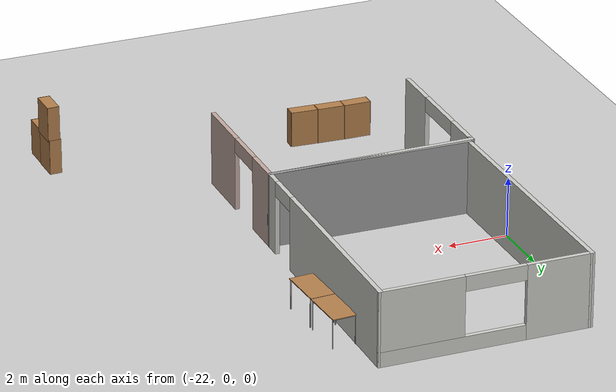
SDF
<sdf version="1.7">
 <world name="default">
  <model name="ground_plane">
   <static>1</static>
   <link name="link">
    <collision name="collision">
     <geometry><plane><normal>0 0 1</normal><size>100 100</size></plane></geometry>
     <surface><friction><ode><mu>100</mu><mu2>50</mu2></ode></friction></surface>
    </collision>
    <visual name="visual">
     <cast_shadows>0</cast_shadows>
     <geometry><plane><normal>0 0 1</normal><size>100 100</size></plane></geometry>
     <material>
      <script><uri>file://media/materials/scripts/gazebo.material</uri><name>Gazebo/Grey</name></script>
     </material>
    </visual>
   </link>
  </model>
  <model name="cps_lab_layout">
   <pose>-2.5615 -0.338224 0 0 -0 0</pose>
   <link name="Wall_100">
    <pose>-12.2949 2.50022 0 0 -0 -1.5708</pose>
    <visual name="Wall_100_Visual_0">
     <pose>-0.931567 0 1.25 0 -0 0</pose>
     <geometry><box><size>6.88687 0.15 2.5</size></box></geometry>
     <material>
      <script><uri>file://media/materials/scripts/gazebo.material</uri><name>Gazebo/CeilingTiled</name></script>
      <ambient>0.760784 0.662745 0.627451 1</ambient>
     </material>
     <meta><layer>0</layer></meta>
    </visual>
    <collision name="Wall_100_Collision_0">
     <geometry><box><size>6.88687 0.15 2.5</size></box></geometry>
     <pose>-0.931567 0 1.25 0 -0 0</pose>
    </collision>
    <visual name="Wall_100_Visual_1">
     <pose>4.04343 0 1.25 0 -0 0</pose>
     <geometry><box><size>0.663135 0.15 2.5</size></box></geometry>
     <material>
      <script><uri>file://media/materials/scripts/gazebo.material</uri><name>Gazebo/CeilingTiled</name></script>
      <ambient>0.760784 0.662745 0.627451 1</ambient>
     </material>
     <meta><layer>0</layer></meta>
    </visual>
    <collision name="Wall_100_Collision_1">
     <geometry><box><size>0.663135 0.15 2.5</size></box></geometry>
     <pose>4.04343 0 1.25 0 -0 0</pose>
    </collision>
    <visual name="Wall_100_Visual_2">
     <pose>3.11186 0 2.25 0 -0 0</pose>
     <geometry><box><size>1.2 0.15 0.5</size></box></geometry>
     <material>
      <script><uri>file://media/materials/scripts/gazebo.material</uri><name>Gazebo/CeilingTiled</name></script>
      <ambient>0.760784 0.662745 0.627451 1</ambient>
     </material>
     <meta><layer>0</layer></meta>
    </visual>
    <collision name="Wall_100_Collision_2">
     <geometry><box><size>1.2 0.15 0.5</size></box></geometry>
     <pose>3.11186 0 2.25 0 -0 0</pose>
    </collision>
   </link>
   <link name="Wall_101">
    <collision name="Wall_101_Collision">
     <geometry><box><size>6.85618 0.15 2.5</size></box></geometry>
     <pose>0 0 1.25 0 -0 0</pose>
    </collision>
    <visual name="Wall_101_Visual">
     <pose>0 0 1.25 0 -0 0</pose>
     <geometry><box><size>6.85618 0.15 2.5</size></box></geometry>
     <material>
      <script><uri>file://media/materials/scripts/gazebo.material</uri><name>Gazebo/Grey</name></script>
      <ambient>1 1 1 1</ambient>
     </material>
     <meta><layer>0</layer></meta>
    </visual>
    <pose>-15.6474 -1.7341 0 0 -0 3.122</pose>
   </link>
   <link name="Wall_102">
    <collision name="Wall_102_Collision">
     <geometry><box><size>8.6581 0.15 2.5</size></box></geometry>
     <pose>0 0 1.25 0 -0 0</pose>
    </collision>
    <visual name="Wall_102_Visual">
     <pose>0 0 1.25 0 -0 0</pose>
     <geometry><box><size>8.6581 0.15 2.5</size></box></geometry>
     <material>
      <script><uri>file://media/materials/scripts/gazebo.material</uri><name>Gazebo/CeilingTiled</name></script>
      <ambient>0.760784 0.662745 0.627451 1</ambient>
     </material>
     <meta><layer>0</layer></meta>
    </visual>
    <pose>-19.0696 2.58506 0 0 -0 1.5872</pose>
   </link>
   <link name="Wall_103">
    <pose>-15.7172 6.81938 0 0 -0 -0.005598</pose>
    <visual name="Wall_103_Visual_0">
     <pose>-2.39687 0 1.25 0 -0 0</pose>
     <geometry><box><size>2.20111 0.15 2.5</size></box></geometry>
     <material>
      <script><uri>file://media/materials/scripts/gazebo.material</uri><name>Gazebo/CeilingTiled</name></script>
      <ambient>1 1 1 1</ambient>
     </material>
     <meta><layer>0</layer></meta>
    </visual>
    <collision name="Wall_103_Collision_0">
     <geometry><box><size>2.20111 0.15 2.5</size></box></geometry>
     <pose>-2.39687 0 1.25 0 -0 0</pose>
    </collision>
    <visual name="Wall_103_Visual_1">
     <pose>1.10056 0 0.25 0 -0 0</pose>
     <geometry><box><size>4.79374 0.15 0.5</size></box></geometry>
     <material>
      <script><uri>file://media/materials/scripts/gazebo.material</uri><name>Gazebo/CeilingTiled</name></script>
      <ambient>1 1 1 1</ambient>
     </material>
     <meta><layer>0</layer></meta>
    </visual>
    <collision name="Wall_103_Collision_1">
     <geometry><box><size>4.79374 0.15 0.5</size></box></geometry>
     <pose>1.10056 0 0.25 0 -0 0</pose>
    </collision>
    <visual name="Wall_103_Visual_2">
     <pose>2.10056 0 1.5 0 -0 0</pose>
     <geometry><box><size>2.79374 0.15 2</size></box></geometry>
     <material>
      <script><uri>file://media/materials/scripts/gazebo.material</uri><name>Gazebo/CeilingTiled</name></script>
      <ambient>1 1 1 1</ambient>
     </material>
     <meta><layer>0</layer></meta>
    </visual>
    <collision name="Wall_103_Collision_2">
     <geometry><box><size>2.79374 0.15 2</size></box></geometry>
     <pose>2.10056 0 1.5 0 -0 0</pose>
    </collision>
    <visual name="Wall_103_Visual_3">
     <pose>-0.296315 0 2.25 0 -0 0</pose>
     <geometry><box><size>2 0.15 0.5</size></box></geometry>
     <material>
      <script><uri>file://media/materials/scripts/gazebo.material</uri><name>Gazebo/CeilingTiled</name></script>
      <ambient>1 1 1 1</ambient>
     </material>
     <meta><layer>0</layer></meta>
    </visual>
    <collision name="Wall_103_Collision_3">
     <geometry><box><size>2 0.15 0.5</size></box></geometry>
     <pose>-0.296315 0 2.25 0 -0 0</pose>
    </collision>
   </link>
   <link name="Wall_104">
    <pose>-12.2949 -4.22478 0 0 -0 -1.5708</pose>
    <visual name="Wall_104_Visual_0">
     <pose>-1.79575 0 1.25 0 -0 0</pose>
     <geometry><box><size>1.40849 0.15 2.5</size></box></geometry>
     <material>
      <script><uri>file://media/materials/scripts/gazebo.material</uri><name>Gazebo/Grey</name></script>
      <ambient>0.760784 0.662745 0.627451 1</ambient>
     </material>
     <meta><layer>0</layer></meta>
    </visual>
    <collision name="Wall_104_Collision_0">
     <geometry><box><size>1.40849 0.15 2.5</size></box></geometry>
     <pose>-1.79575 0 1.25 0 -0 0</pose>
    </collision>
    <visual name="Wall_104_Visual_1">
     <pose>1.45425 0 1.25 0 -0 0</pose>
     <geometry><box><size>2.09151 0.15 2.5</size></box></geometry>
     <material>
      <script><uri>file://media/materials/scripts/gazebo.material</uri><name>Gazebo/Grey</name></script>
      <ambient>0.760784 0.662745 0.627451 1</ambient>
     </material>
     <meta><layer>0</layer></meta>
    </visual>
    <collision name="Wall_104_Collision_1">
     <geometry><box><size>2.09151 0.15 2.5</size></box></geometry>
     <pose>1.45425 0 1.25 0 -0 0</pose>
    </collision>
    <visual name="Wall_104_Visual_2">
     <pose>-0.34151 0 2.25 0 -0 0</pose>
     <geometry><box><size>1.5 0.15 0.5</size></box></geometry>
     <material>
      <script><uri>file://media/materials/scripts/gazebo.material</uri><name>Gazebo/Grey</name></script>
      <ambient>0.760784 0.662745 0.627451 1</ambient>
     </material>
     <meta><layer>0</layer></meta>
    </visual>
    <collision name="Wall_104_Collision_2">
     <geometry><box><size>1.5 0.15 0.5</size></box></geometry>
     <pose>-0.34151 0 2.25 0 -0 0</pose>
    </collision>
   </link>
   <link name="Wall_106">
    <pose>-19.1333 -4.32604 0 0 -0 1.5708</pose>
    <visual name="Wall_106_Visual_0">
     <pose>-1.70451 0 1.25 0 -0 0</pose>
     <geometry><box><size>1.59098 0.15 2.5</size></box></geometry>
     <material>
      <script><uri>file://media/materials/scripts/gazebo.material</uri><name>Gazebo/CeilingTiled</name></script>
      <ambient>0.760784 0.662745 0.627451 1</ambient>
     </material>
     <meta><layer>0</layer></meta>
    </visual>
    <collision name="Wall_106_Collision_0">
     <geometry><box><size>1.59098 0.15 2.5</size></box></geometry>
     <pose>-1.70451 0 1.25 0 -0 0</pose>
    </collision>
    <visual name="Wall_106_Visual_1">
     <pose>0.795491 0 0.25 0 -0 0</pose>
     <geometry><box><size>3.40902 0.15 0.5</size></box></geometry>
     <material>
      <script><uri>file://media/materials/scripts/gazebo.material</uri><name>Gazebo/CeilingTiled</name></script>
      <ambient>0.760784 0.662745 0.627451 1</ambient>
     </material>
     <meta><layer>0</layer></meta>
    </visual>
    <collision name="Wall_106_Collision_1">
     <geometry><box><size>3.40902 0.15 0.5</size></box></geometry>
     <pose>0.795491 0 0.25 0 -0 0</pose>
    </collision>
    <visual name="Wall_106_Visual_2">
     <pose>1.79549 0 1.5 0 -0 0</pose>
     <geometry><box><size>1.40902 0.15 2</size></box></geometry>
     <material>
      <script><uri>file://media/materials/scripts/gazebo.material</uri><name>Gazebo/CeilingTiled</name></script>
      <ambient>0.760784 0.662745 0.627451 1</ambient>
     </material>
     <meta><layer>0</layer></meta>
    </visual>
    <collision name="Wall_106_Collision_2">
     <geometry><box><size>1.40902 0.15 2</size></box></geometry>
     <pose>1.79549 0 1.5 0 -0 0</pose>
    </collision>
    <visual name="Wall_106_Visual_3">
     <pose>0.090982 0 2.25 0 -0 0</pose>
     <geometry><box><size>2 0.15 0.5</size></box></geometry>
     <material>
      <script><uri>file://media/materials/scripts/gazebo.material</uri><name>Gazebo/CeilingTiled</name></script>
      <ambient>0.760784 0.662745 0.627451 1</ambient>
     </material>
     <meta><layer>0</layer></meta>
    </visual>
    <collision name="Wall_106_Collision_3">
     <geometry><box><size>2 0.15 0.5</size></box></geometry>
     <pose>0.090982 0 2.25 0 -0 0</pose>
    </collision>
   </link>
   <link name="Wall_107">
    <collision name="Wall_107_Collision">
     <geometry><box><size>0.15 0.15 2.5</size></box></geometry>
     <pose>0 0 1.25 0 -0 0</pose>
    </collision>
    <visual name="Wall_107_Visual">
     <pose>0 0 1.25 0 -0 0</pose>
     <geometry><box><size>0.15 0.15 2.5</size></box></geometry>
     <material>
      <script><uri>file://media/materials/scripts/gazebo.material</uri><name>Gazebo/Grey</name></script>
      <ambient>1 1 1 1</ambient>
     </material>
     <meta><layer>0</layer></meta>
    </visual>
    <pose>-19.1333 -1.90104 0 0 -0 0</pose>
   </link>
   <link name="Wall_108">
    <collision name="Wall_108_Collision">
     <geometry><box><size>0.15 0.15 2.5</size></box></geometry>
     <pose>0 0 1.25 0 -0 0</pose>
    </collision>
    <visual name="Wall_108_Visual">
     <pose>0 0 1.25 0 -0 0</pose>
     <geometry><box><size>0.15 0.15 2.5</size></box></geometry>
     <material>
      <script><uri>file://media/materials/scripts/gazebo.material</uri><name>Gazebo/Grey</name></script>
      <ambient>1 1 1 1</ambient>
     </material>
     <meta><layer>0</layer></meta>
    </visual>
    <pose>-19.1333 -1.90104 0 0 -0 0</pose>
   </link>
   <link name="Wall_109">
    <collision name="Wall_109_Collision">
     <geometry><box><size>0.25 0.15 2.5</size></box></geometry>
     <pose>0 0 1.25 0 -0 0</pose>
    </collision>
    <visual name="Wall_109_Visual">
     <pose>0 0 1.25 0 -0 0</pose>
     <geometry><box><size>0.25 0.15 2.5</size></box></geometry>
     <material>
      <script><uri>file://media/materials/scripts/gazebo.material</uri><name>Gazebo/Grey</name></script>
      <ambient>1 1 1 1</ambient>
     </material>
     <meta><layer>0</layer></meta>
    </visual>
    <pose>-19.1333 -1.85104 0 0 -0 1.5708</pose>
   </link>
   <link name="Wall_110">
    <collision name="Wall_110_Collision">
     <geometry><box><size>6.98839 0.15 2.5</size></box></geometry>
     <pose>0 0 1.25 0 -0 0</pose>
    </collision>
    <visual name="Wall_110_Visual">
     <pose>0 0 1.25 0 -0 0</pose>
     <geometry><box><size>6.98839 0.15 2.5</size></box></geometry>
     <material>
      <script><uri>file://media/materials/scripts/gazebo.material</uri><name>Gazebo/CeilingTiled</name></script>
      <ambient>0.760784 0.662745 0.627451 1</ambient>
     </material>
     <meta><layer>0</layer></meta>
    </visual>
    <pose>-15.7141 -1.80041 0 0 -0 0.000184</pose>
   </link>
   <static>1</static>
  </model>
  <model name="Bookshelf_0_clone_clone">
   <static>1</static>
   <link name="link">
    <inertial><mass>1</mass></inertial>
    <collision name="back">
     <pose>0 0.005 0.6 0 -0 0</pose>
     <geometry><box><size>0.9 0.01 1.2</size></box></geometry>
    </collision>
    <visual name="visual1">
     <pose>0 0.005 0.6 0 -0 0</pose>
     <geometry><box><size>0.9 0.01 1.2</size></box></geometry>
     <material>
      <diffuse>1 1 1 1</diffuse>
      <script><uri>file://media/materials/scripts/gazebo.material</uri><name>Gazebo/Wood</name></script>
      <pbr>
       <metal>
        <albedo_map>https://fuel.gazebosim.org/1.0/openrobotics/models/bookshelf/4/files/bookshelf_diffuse.jpg</albedo_map>
       </metal>
      </pbr>
     </material>
    </visual>
    <collision name="left_side">
     <pose>0.45 -0.195 0.6 0 -0 0</pose>
     <geometry><box><size>0.02 0.4 1.2</size></box></geometry>
    </collision>
    <visual name="visual2">
     <pose>0.45 -0.195 0.6 0 -0 0</pose>
     <geometry><box><size>0.02 0.4 1.2</size></box></geometry>
     <material>
      <diffuse>1 1 1 1</diffuse>
      <script><uri>file://media/materials/scripts/gazebo.material</uri><name>Gazebo/Wood</name></script>
      <pbr>
       <metal>
        <albedo_map>https://fuel.gazebosim.org/1.0/openrobotics/models/bookshelf/4/files/bookshelf_diffuse.jpg</albedo_map>
       </metal>
      </pbr>
     </material>
    </visual>
    <collision name="right_side">
     <pose>-0.45 -0.195 0.6 0 -0 0</pose>
     <geometry><box><size>0.02 0.4 1.2</size></box></geometry>
    </collision>
    <visual name="visual3">
     <pose>-0.45 -0.195 0.6 0 -0 0</pose>
     <geometry><box><size>0.02 0.4 1.2</size></box></geometry>
     <material>
      <diffuse>1 1 1 1</diffuse>
      <script><uri>file://media/materials/scripts/gazebo.material</uri><name>Gazebo/Wood</name></script>
      <pbr>
       <metal>
        <albedo_map>https://fuel.gazebosim.org/1.0/openrobotics/models/bookshelf/4/files/bookshelf_diffuse.jpg</albedo_map>
       </metal>
      </pbr>
     </material>
    </visual>
    <collision name="bottom">
     <pose>0 -0.195 0.03 0 -0 0</pose>
     <geometry><box><size>0.88 0.4 0.06</size></box></geometry>
    </collision>
    <visual name="visual4">
     <pose>0 -0.195 0.03 0 -0 0</pose>
     <geometry><box><size>0.88 0.4 0.06</size></box></geometry>
     <material>
      <diffuse>1 1 1 1</diffuse>
      <script><uri>file://media/materials/scripts/gazebo.material</uri><name>Gazebo/Wood</name></script>
      <pbr>
       <metal>
        <albedo_map>https://fuel.gazebosim.org/1.0/openrobotics/models/bookshelf/4/files/bookshelf_diffuse.jpg</albedo_map>
       </metal>
      </pbr>
     </material>
    </visual>
    <collision name="top">
     <pose>0 -0.195 1.19 0 -0 0</pose>
     <geometry><box><size>0.88 0.4 0.02</size></box></geometry>
    </collision>
    <visual name="visual5">
     <pose>0 -0.195 1.19 0 -0 0</pose>
     <geometry><box><size>0.88 0.4 0.02</size></box></geometry>
     <material>
      <diffuse>1 1 1 1</diffuse>
      <script><uri>file://media/materials/scripts/gazebo.material</uri><name>Gazebo/Wood</name></script>
      <pbr>
       <metal>
        <albedo_map>https://fuel.gazebosim.org/1.0/openrobotics/models/bookshelf/4/files/bookshelf_diffuse.jpg</albedo_map>
       </metal>
      </pbr>
     </material>
    </visual>
    <collision name="low_shelf">
     <pose>0 -0.195 0.43 0 -0 0</pose>
     <geometry><box><size>0.88 0.4 0.02</size></box></geometry>
    </collision>
    <visual name="visual6">
     <pose>0 -0.195 0.43 0 -0 0</pose>
     <geometry><box><size>0.88 0.4 0.02</size></box></geometry>
     <material>
      <diffuse>1 1 1 1</diffuse>
      <script><uri>file://media/materials/scripts/gazebo.material</uri><name>Gazebo/Wood</name></script>
      <pbr>
       <metal>
        <albedo_map>https://fuel.gazebosim.org/1.0/openrobotics/models/bookshelf/4/files/bookshelf_diffuse.jpg</albedo_map>
       </metal>
      </pbr>
     </material>
    </visual>
    <collision name="high_shelf">
     <pose>0 -0.195 0.8 0 -0 0</pose>
     <geometry><box><size>0.88 0.4 0.02</size></box></geometry>
    </collision>
    <visual name="visual7">
     <pose>0 -0.195 0.8 0 -0 0</pose>
     <geometry><box><size>0.88 0.4 0.02</size></box></geometry>
     <material>
      <diffuse>1 1 1 1</diffuse>
      <script><uri>file://media/materials/scripts/gazebo.material</uri><name>Gazebo/Wood</name></script>
      <pbr>
       <metal>
        <albedo_map>https://fuel.gazebosim.org/1.0/openrobotics/models/bookshelf/4/files/bookshelf_diffuse.jpg</albedo_map>
       </metal>
      </pbr>
     </material>
    </visual>
   </link>
   <pose>-10.169 -10.1043 0 0 0 -1.55424</pose>
  </model>
  <model name="Bookshelf_0_clone_clone_0">
   <static>1</static>
   <link name="link">
    <inertial><mass>1</mass></inertial>
    <collision name="back">
     <pose>0 0.005 0.6 0 -0 0</pose>
     <geometry><box><size>0.9 0.01 1.2</size></box></geometry>
    </collision>
    <visual name="visual1">
     <pose>0 0.005 0.6 0 -0 0</pose>
     <geometry><box><size>0.9 0.01 1.2</size></box></geometry>
     <material>
      <diffuse>1 1 1 1</diffuse>
      <script><uri>file://media/materials/scripts/gazebo.material</uri><name>Gazebo/Wood</name></script>
      <pbr>
       <metal>
        <albedo_map>https://fuel.gazebosim.org/1.0/openrobotics/models/bookshelf/4/files/bookshelf_diffuse.jpg</albedo_map>
       </metal>
      </pbr>
     </material>
    </visual>
    <collision name="left_side">
     <pose>0.45 -0.195 0.6 0 -0 0</pose>
     <geometry><box><size>0.02 0.4 1.2</size></box></geometry>
    </collision>
    <visual name="visual2">
     <pose>0.45 -0.195 0.6 0 -0 0</pose>
     <geometry><box><size>0.02 0.4 1.2</size></box></geometry>
     <material>
      <diffuse>1 1 1 1</diffuse>
      <script><uri>file://media/materials/scripts/gazebo.material</uri><name>Gazebo/Wood</name></script>
      <pbr>
       <metal>
        <albedo_map>https://fuel.gazebosim.org/1.0/openrobotics/models/bookshelf/4/files/bookshelf_diffuse.jpg</albedo_map>
       </metal>
      </pbr>
     </material>
    </visual>
    <collision name="right_side">
     <pose>-0.45 -0.195 0.6 0 -0 0</pose>
     <geometry><box><size>0.02 0.4 1.2</size></box></geometry>
    </collision>
    <visual name="visual3">
     <pose>-0.45 -0.195 0.6 0 -0 0</pose>
     <geometry><box><size>0.02 0.4 1.2</size></box></geometry>
     <material>
      <diffuse>1 1 1 1</diffuse>
      <script><uri>file://media/materials/scripts/gazebo.material</uri><name>Gazebo/Wood</name></script>
      <pbr>
       <metal>
        <albedo_map>https://fuel.gazebosim.org/1.0/openrobotics/models/bookshelf/4/files/bookshelf_diffuse.jpg</albedo_map>
       </metal>
      </pbr>
     </material>
    </visual>
    <collision name="bottom">
     <pose>0 -0.195 0.03 0 -0 0</pose>
     <geometry><box><size>0.88 0.4 0.06</size></box></geometry>
    </collision>
    <visual name="visual4">
     <pose>0 -0.195 0.03 0 -0 0</pose>
     <geometry><box><size>0.88 0.4 0.06</size></box></geometry>
     <material>
      <diffuse>1 1 1 1</diffuse>
      <script><uri>file://media/materials/scripts/gazebo.material</uri><name>Gazebo/Wood</name></script>
      <pbr>
       <metal>
        <albedo_map>https://fuel.gazebosim.org/1.0/openrobotics/models/bookshelf/4/files/bookshelf_diffuse.jpg</albedo_map>
       </metal>
      </pbr>
     </material>
    </visual>
    <collision name="top">
     <pose>0 -0.195 1.19 0 -0 0</pose>
     <geometry><box><size>0.88 0.4 0.02</size></box></geometry>
    </collision>
    <visual name="visual5">
     <pose>0 -0.195 1.19 0 -0 0</pose>
     <geometry><box><size>0.88 0.4 0.02</size></box></geometry>
     <material>
      <diffuse>1 1 1 1</diffuse>
      <script><uri>file://media/materials/scripts/gazebo.material</uri><name>Gazebo/Wood</name></script>
      <pbr>
       <metal>
        <albedo_map>https://fuel.gazebosim.org/1.0/openrobotics/models/bookshelf/4/files/bookshelf_diffuse.jpg</albedo_map>
       </metal>
      </pbr>
     </material>
    </visual>
    <collision name="low_shelf">
     <pose>0 -0.195 0.43 0 -0 0</pose>
     <geometry><box><size>0.88 0.4 0.02</size></box></geometry>
    </collision>
    <visual name="visual6">
     <pose>0 -0.195 0.43 0 -0 0</pose>
     <geometry><box><size>0.88 0.4 0.02</size></box></geometry>
     <material>
      <diffuse>1 1 1 1</diffuse>
      <script><uri>file://media/materials/scripts/gazebo.material</uri><name>Gazebo/Wood</name></script>
      <pbr>
       <metal>
        <albedo_map>https://fuel.gazebosim.org/1.0/openrobotics/models/bookshelf/4/files/bookshelf_diffuse.jpg</albedo_map>
       </metal>
      </pbr>
     </material>
    </visual>
    <collision name="high_shelf">
     <pose>0 -0.195 0.8 0 -0 0</pose>
     <geometry><box><size>0.88 0.4 0.02</size></box></geometry>
    </collision>
    <visual name="visual7">
     <pose>0 -0.195 0.8 0 -0 0</pose>
     <geometry><box><size>0.88 0.4 0.02</size></box></geometry>
     <material>
      <diffuse>1 1 1 1</diffuse>
      <script><uri>file://media/materials/scripts/gazebo.material</uri><name>Gazebo/Wood</name></script>
      <pbr>
       <metal>
        <albedo_map>https://fuel.gazebosim.org/1.0/openrobotics/models/bookshelf/4/files/bookshelf_diffuse.jpg</albedo_map>
       </metal>
      </pbr>
     </material>
    </visual>
   </link>
   <pose>-10.1688 -10.9922 0 0 0 -1.55424</pose>
  </model>
  <model name="Bookshelf_0_clone_clone_4_clone_clone_3">
   <static>1</static>
   <link name="link">
    <inertial><mass>1</mass></inertial>
    <collision name="back">
     <pose>0 0.005 0.6 0 -0 0</pose>
     <geometry><box><size>0.9 0.01 1.2</size></box></geometry>
    </collision>
    <visual name="visual1">
     <pose>0 0.005 0.6 0 -0 0</pose>
     <geometry><box><size>0.9 0.01 1.2</size></box></geometry>
     <material>
      <diffuse>1 1 1 1</diffuse>
      <script><uri>file://media/materials/scripts/gazebo.material</uri><name>Gazebo/Wood</name></script>
      <pbr>
       <metal>
        <albedo_map>https://fuel.gazebosim.org/1.0/openrobotics/models/bookshelf/4/files/bookshelf_diffuse.jpg</albedo_map>
       </metal>
      </pbr>
     </material>
    </visual>
    <collision name="left_side">
     <pose>0.45 -0.195 0.6 0 -0 0</pose>
     <geometry><box><size>0.02 0.4 1.2</size></box></geometry>
    </collision>
    <visual name="visual2">
     <pose>0.45 -0.195 0.6 0 -0 0</pose>
     <geometry><box><size>0.02 0.4 1.2</size></box></geometry>
     <material>
      <diffuse>1 1 1 1</diffuse>
      <script><uri>file://media/materials/scripts/gazebo.material</uri><name>Gazebo/Wood</name></script>
      <pbr>
       <metal>
        <albedo_map>https://fuel.gazebosim.org/1.0/openrobotics/models/bookshelf/4/files/bookshelf_diffuse.jpg</albedo_map>
       </metal>
      </pbr>
     </material>
    </visual>
    <collision name="right_side">
     <pose>-0.45 -0.195 0.6 0 -0 0</pose>
     <geometry><box><size>0.02 0.4 1.2</size></box></geometry>
    </collision>
    <visual name="visual3">
     <pose>-0.45 -0.195 0.6 0 -0 0</pose>
     <geometry><box><size>0.02 0.4 1.2</size></box></geometry>
     <material>
      <diffuse>1 1 1 1</diffuse>
      <script><uri>file://media/materials/scripts/gazebo.material</uri><name>Gazebo/Wood</name></script>
      <pbr>
       <metal>
        <albedo_map>https://fuel.gazebosim.org/1.0/openrobotics/models/bookshelf/4/files/bookshelf_diffuse.jpg</albedo_map>
       </metal>
      </pbr>
     </material>
    </visual>
    <collision name="bottom">
     <pose>0 -0.195 0.03 0 -0 0</pose>
     <geometry><box><size>0.88 0.4 0.06</size></box></geometry>
    </collision>
    <visual name="visual4">
     <pose>0 -0.195 0.03 0 -0 0</pose>
     <geometry><box><size>0.88 0.4 0.06</size></box></geometry>
     <material>
      <diffuse>1 1 1 1</diffuse>
      <script><uri>file://media/materials/scripts/gazebo.material</uri><name>Gazebo/Wood</name></script>
      <pbr>
       <metal>
        <albedo_map>https://fuel.gazebosim.org/1.0/openrobotics/models/bookshelf/4/files/bookshelf_diffuse.jpg</albedo_map>
       </metal>
      </pbr>
     </material>
    </visual>
    <collision name="top">
     <pose>0 -0.195 1.19 0 -0 0</pose>
     <geometry><box><size>0.88 0.4 0.02</size></box></geometry>
    </collision>
    <visual name="visual5">
     <pose>0 -0.195 1.19 0 -0 0</pose>
     <geometry><box><size>0.88 0.4 0.02</size></box></geometry>
     <material>
      <diffuse>1 1 1 1</diffuse>
      <script><uri>file://media/materials/scripts/gazebo.material</uri><name>Gazebo/Wood</name></script>
      <pbr>
       <metal>
        <albedo_map>https://fuel.gazebosim.org/1.0/openrobotics/models/bookshelf/4/files/bookshelf_diffuse.jpg</albedo_map>
       </metal>
      </pbr>
     </material>
    </visual>
    <collision name="low_shelf">
     <pose>0 -0.195 0.43 0 -0 0</pose>
     <geometry><box><size>0.88 0.4 0.02</size></box></geometry>
    </collision>
    <visual name="visual6">
     <pose>0 -0.195 0.43 0 -0 0</pose>
     <geometry><box><size>0.88 0.4 0.02</size></box></geometry>
     <material>
      <diffuse>1 1 1 1</diffuse>
      <script><uri>file://media/materials/scripts/gazebo.material</uri><name>Gazebo/Wood</name></script>
      <pbr>
       <metal>
        <albedo_map>https://fuel.gazebosim.org/1.0/openrobotics/models/bookshelf/4/files/bookshelf_diffuse.jpg</albedo_map>
       </metal>
      </pbr>
     </material>
    </visual>
    <collision name="high_shelf">
     <pose>0 -0.195 0.8 0 -0 0</pose>
     <geometry><box><size>0.88 0.4 0.02</size></box></geometry>
    </collision>
    <visual name="visual7">
     <pose>0 -0.195 0.8 0 -0 0</pose>
     <geometry><box><size>0.88 0.4 0.02</size></box></geometry>
     <material>
      <diffuse>1 1 1 1</diffuse>
      <script><uri>file://media/materials/scripts/gazebo.material</uri><name>Gazebo/Wood</name></script>
      <pbr>
       <metal>
        <albedo_map>https://fuel.gazebosim.org/1.0/openrobotics/models/bookshelf/4/files/bookshelf_diffuse.jpg</albedo_map>
       </metal>
      </pbr>
     </material>
    </visual>
   </link>
   <pose>-10.1398 -10.1118 1.15542 0 0 -1.55424</pose>
  </model>
  <model name="Bookshelf_0_clone_clone_4_clone_clone_4">
   <static>1</static>
   <link name="link">
    <inertial><mass>1</mass></inertial>
    <collision name="back">
     <pose>0 0.005 0.6 0 -0 0</pose>
     <geometry><box><size>0.9 0.01 1.2</size></box></geometry>
    </collision>
    <visual name="visual1">
     <pose>0 0.005 0.6 0 -0 0</pose>
     <geometry><box><size>0.9 0.01 1.2</size></box></geometry>
     <material>
      <diffuse>1 1 1 1</diffuse>
      <script><uri>file://media/materials/scripts/gazebo.material</uri><name>Gazebo/Wood</name></script>
      <pbr>
       <metal>
        <albedo_map>https://fuel.gazebosim.org/1.0/openrobotics/models/bookshelf/4/files/bookshelf_diffuse.jpg</albedo_map>
       </metal>
      </pbr>
     </material>
    </visual>
    <collision name="left_side">
     <pose>0.45 -0.195 0.6 0 -0 0</pose>
     <geometry><box><size>0.02 0.4 1.2</size></box></geometry>
    </collision>
    <visual name="visual2">
     <pose>0.45 -0.195 0.6 0 -0 0</pose>
     <geometry><box><size>0.02 0.4 1.2</size></box></geometry>
     <material>
      <diffuse>1 1 1 1</diffuse>
      <script><uri>file://media/materials/scripts/gazebo.material</uri><name>Gazebo/Wood</name></script>
      <pbr>
       <metal>
        <albedo_map>https://fuel.gazebosim.org/1.0/openrobotics/models/bookshelf/4/files/bookshelf_diffuse.jpg</albedo_map>
       </metal>
      </pbr>
     </material>
    </visual>
    <collision name="right_side">
     <pose>-0.45 -0.195 0.6 0 -0 0</pose>
     <geometry><box><size>0.02 0.4 1.2</size></box></geometry>
    </collision>
    <visual name="visual3">
     <pose>-0.45 -0.195 0.6 0 -0 0</pose>
     <geometry><box><size>0.02 0.4 1.2</size></box></geometry>
     <material>
      <diffuse>1 1 1 1</diffuse>
      <script><uri>file://media/materials/scripts/gazebo.material</uri><name>Gazebo/Wood</name></script>
      <pbr>
       <metal>
        <albedo_map>https://fuel.gazebosim.org/1.0/openrobotics/models/bookshelf/4/files/bookshelf_diffuse.jpg</albedo_map>
       </metal>
      </pbr>
     </material>
    </visual>
    <collision name="bottom">
     <pose>0 -0.195 0.03 0 -0 0</pose>
     <geometry><box><size>0.88 0.4 0.06</size></box></geometry>
    </collision>
    <visual name="visual4">
     <pose>0 -0.195 0.03 0 -0 0</pose>
     <geometry><box><size>0.88 0.4 0.06</size></box></geometry>
     <material>
      <diffuse>1 1 1 1</diffuse>
      <script><uri>file://media/materials/scripts/gazebo.material</uri><name>Gazebo/Wood</name></script>
      <pbr>
       <metal>
        <albedo_map>https://fuel.gazebosim.org/1.0/openrobotics/models/bookshelf/4/files/bookshelf_diffuse.jpg</albedo_map>
       </metal>
      </pbr>
     </material>
    </visual>
    <collision name="top">
     <pose>0 -0.195 1.19 0 -0 0</pose>
     <geometry><box><size>0.88 0.4 0.02</size></box></geometry>
    </collision>
    <visual name="visual5">
     <pose>0 -0.195 1.19 0 -0 0</pose>
     <geometry><box><size>0.88 0.4 0.02</size></box></geometry>
     <material>
      <diffuse>1 1 1 1</diffuse>
      <script><uri>file://media/materials/scripts/gazebo.material</uri><name>Gazebo/Wood</name></script>
      <pbr>
       <metal>
        <albedo_map>https://fuel.gazebosim.org/1.0/openrobotics/models/bookshelf/4/files/bookshelf_diffuse.jpg</albedo_map>
       </metal>
      </pbr>
     </material>
    </visual>
    <collision name="low_shelf">
     <pose>0 -0.195 0.43 0 -0 0</pose>
     <geometry><box><size>0.88 0.4 0.02</size></box></geometry>
    </collision>
    <visual name="visual6">
     <pose>0 -0.195 0.43 0 -0 0</pose>
     <geometry><box><size>0.88 0.4 0.02</size></box></geometry>
     <material>
      <diffuse>1 1 1 1</diffuse>
      <script><uri>file://media/materials/scripts/gazebo.material</uri><name>Gazebo/Wood</name></script>
      <pbr>
       <metal>
        <albedo_map>https://fuel.gazebosim.org/1.0/openrobotics/models/bookshelf/4/files/bookshelf_diffuse.jpg</albedo_map>
       </metal>
      </pbr>
     </material>
    </visual>
    <collision name="high_shelf">
     <pose>0 -0.195 0.8 0 -0 0</pose>
     <geometry><box><size>0.88 0.4 0.02</size></box></geometry>
    </collision>
    <visual name="visual7">
     <pose>0 -0.195 0.8 0 -0 0</pose>
     <geometry><box><size>0.88 0.4 0.02</size></box></geometry>
     <material>
      <diffuse>1 1 1 1</diffuse>
      <script><uri>file://media/materials/scripts/gazebo.material</uri><name>Gazebo/Wood</name></script>
      <pbr>
       <metal>
        <albedo_map>https://fuel.gazebosim.org/1.0/openrobotics/models/bookshelf/4/files/bookshelf_diffuse.jpg</albedo_map>
       </metal>
      </pbr>
     </material>
    </visual>
   </link>
   <pose>-18.0153 -7.06079 0.797604 0 0 -0.056256</pose>
  </model>
  <model name="Bookshelf_0_clone_clone_4_clone_clone_5">
   <static>1</static>
   <link name="link">
    <inertial><mass>1</mass></inertial>
    <collision name="back">
     <pose>0 0.005 0.6 0 -0 0</pose>
     <geometry><box><size>0.9 0.01 1.2</size></box></geometry>
    </collision>
    <visual name="visual1">
     <pose>0 0.005 0.6 0 -0 0</pose>
     <geometry><box><size>0.9 0.01 1.2</size></box></geometry>
     <material>
      <diffuse>1 1 1 1</diffuse>
      <script><uri>file://media/materials/scripts/gazebo.material</uri><name>Gazebo/Wood</name></script>
      <pbr>
       <metal>
        <albedo_map>https://fuel.gazebosim.org/1.0/openrobotics/models/bookshelf/4/files/bookshelf_diffuse.jpg</albedo_map>
       </metal>
      </pbr>
     </material>
    </visual>
    <collision name="left_side">
     <pose>0.45 -0.195 0.6 0 -0 0</pose>
     <geometry><box><size>0.02 0.4 1.2</size></box></geometry>
    </collision>
    <visual name="visual2">
     <pose>0.45 -0.195 0.6 0 -0 0</pose>
     <geometry><box><size>0.02 0.4 1.2</size></box></geometry>
     <material>
      <diffuse>1 1 1 1</diffuse>
      <script><uri>file://media/materials/scripts/gazebo.material</uri><name>Gazebo/Wood</name></script>
      <pbr>
       <metal>
        <albedo_map>https://fuel.gazebosim.org/1.0/openrobotics/models/bookshelf/4/files/bookshelf_diffuse.jpg</albedo_map>
       </metal>
      </pbr>
     </material>
    </visual>
    <collision name="right_side">
     <pose>-0.45 -0.195 0.6 0 -0 0</pose>
     <geometry><box><size>0.02 0.4 1.2</size></box></geometry>
    </collision>
    <visual name="visual3">
     <pose>-0.45 -0.195 0.6 0 -0 0</pose>
     <geometry><box><size>0.02 0.4 1.2</size></box></geometry>
     <material>
      <diffuse>1 1 1 1</diffuse>
      <script><uri>file://media/materials/scripts/gazebo.material</uri><name>Gazebo/Wood</name></script>
      <pbr>
       <metal>
        <albedo_map>https://fuel.gazebosim.org/1.0/openrobotics/models/bookshelf/4/files/bookshelf_diffuse.jpg</albedo_map>
       </metal>
      </pbr>
     </material>
    </visual>
    <collision name="bottom">
     <pose>0 -0.195 0.03 0 -0 0</pose>
     <geometry><box><size>0.88 0.4 0.06</size></box></geometry>
    </collision>
    <visual name="visual4">
     <pose>0 -0.195 0.03 0 -0 0</pose>
     <geometry><box><size>0.88 0.4 0.06</size></box></geometry>
     <material>
      <diffuse>1 1 1 1</diffuse>
      <script><uri>file://media/materials/scripts/gazebo.material</uri><name>Gazebo/Wood</name></script>
      <pbr>
       <metal>
        <albedo_map>https://fuel.gazebosim.org/1.0/openrobotics/models/bookshelf/4/files/bookshelf_diffuse.jpg</albedo_map>
       </metal>
      </pbr>
     </material>
    </visual>
    <collision name="top">
     <pose>0 -0.195 1.19 0 -0 0</pose>
     <geometry><box><size>0.88 0.4 0.02</size></box></geometry>
    </collision>
    <visual name="visual5">
     <pose>0 -0.195 1.19 0 -0 0</pose>
     <geometry><box><size>0.88 0.4 0.02</size></box></geometry>
     <material>
      <diffuse>1 1 1 1</diffuse>
      <script><uri>file://media/materials/scripts/gazebo.material</uri><name>Gazebo/Wood</name></script>
      <pbr>
       <metal>
        <albedo_map>https://fuel.gazebosim.org/1.0/openrobotics/models/bookshelf/4/files/bookshelf_diffuse.jpg</albedo_map>
       </metal>
      </pbr>
     </material>
    </visual>
    <collision name="low_shelf">
     <pose>0 -0.195 0.43 0 -0 0</pose>
     <geometry><box><size>0.88 0.4 0.02</size></box></geometry>
    </collision>
    <visual name="visual6">
     <pose>0 -0.195 0.43 0 -0 0</pose>
     <geometry><box><size>0.88 0.4 0.02</size></box></geometry>
     <material>
      <diffuse>1 1 1 1</diffuse>
      <script><uri>file://media/materials/scripts/gazebo.material</uri><name>Gazebo/Wood</name></script>
      <pbr>
       <metal>
        <albedo_map>https://fuel.gazebosim.org/1.0/openrobotics/models/bookshelf/4/files/bookshelf_diffuse.jpg</albedo_map>
       </metal>
      </pbr>
     </material>
    </visual>
    <collision name="high_shelf">
     <pose>0 -0.195 0.8 0 -0 0</pose>
     <geometry><box><size>0.88 0.4 0.02</size></box></geometry>
    </collision>
    <visual name="visual7">
     <pose>0 -0.195 0.8 0 -0 0</pose>
     <geometry><box><size>0.88 0.4 0.02</size></box></geometry>
     <material>
      <diffuse>1 1 1 1</diffuse>
      <script><uri>file://media/materials/scripts/gazebo.material</uri><name>Gazebo/Wood</name></script>
      <pbr>
       <metal>
        <albedo_map>https://fuel.gazebosim.org/1.0/openrobotics/models/bookshelf/4/files/bookshelf_diffuse.jpg</albedo_map>
       </metal>
      </pbr>
     </material>
    </visual>
   </link>
   <pose>-19.8528 -7.00767 0.782521 0 0 -0.004171</pose>
  </model>
  <model name="Bookshelf_0_clone_clone_4_clone_clone_6">
   <static>1</static>
   <link name="link">
    <inertial><mass>1</mass></inertial>
    <collision name="back">
     <pose>0 0.005 0.6 0 -0 0</pose>
     <geometry><box><size>0.9 0.01 1.2</size></box></geometry>
    </collision>
    <visual name="visual1">
     <pose>0 0.005 0.6 0 -0 0</pose>
     <geometry><box><size>0.9 0.01 1.2</size></box></geometry>
     <material>
      <diffuse>1 1 1 1</diffuse>
      <script><uri>file://media/materials/scripts/gazebo.material</uri><name>Gazebo/Wood</name></script>
      <pbr>
       <metal>
        <albedo_map>https://fuel.gazebosim.org/1.0/openrobotics/models/bookshelf/4/files/bookshelf_diffuse.jpg</albedo_map>
       </metal>
      </pbr>
     </material>
    </visual>
    <collision name="left_side">
     <pose>0.45 -0.195 0.6 0 -0 0</pose>
     <geometry><box><size>0.02 0.4 1.2</size></box></geometry>
    </collision>
    <visual name="visual2">
     <pose>0.45 -0.195 0.6 0 -0 0</pose>
     <geometry><box><size>0.02 0.4 1.2</size></box></geometry>
     <material>
      <diffuse>1 1 1 1</diffuse>
      <script><uri>file://media/materials/scripts/gazebo.material</uri><name>Gazebo/Wood</name></script>
      <pbr>
       <metal>
        <albedo_map>https://fuel.gazebosim.org/1.0/openrobotics/models/bookshelf/4/files/bookshelf_diffuse.jpg</albedo_map>
       </metal>
      </pbr>
     </material>
    </visual>
    <collision name="right_side">
     <pose>-0.45 -0.195 0.6 0 -0 0</pose>
     <geometry><box><size>0.02 0.4 1.2</size></box></geometry>
    </collision>
    <visual name="visual3">
     <pose>-0.45 -0.195 0.6 0 -0 0</pose>
     <geometry><box><size>0.02 0.4 1.2</size></box></geometry>
     <material>
      <diffuse>1 1 1 1</diffuse>
      <script><uri>file://media/materials/scripts/gazebo.material</uri><name>Gazebo/Wood</name></script>
      <pbr>
       <metal>
        <albedo_map>https://fuel.gazebosim.org/1.0/openrobotics/models/bookshelf/4/files/bookshelf_diffuse.jpg</albedo_map>
       </metal>
      </pbr>
     </material>
    </visual>
    <collision name="bottom">
     <pose>0 -0.195 0.03 0 -0 0</pose>
     <geometry><box><size>0.88 0.4 0.06</size></box></geometry>
    </collision>
    <visual name="visual4">
     <pose>0 -0.195 0.03 0 -0 0</pose>
     <geometry><box><size>0.88 0.4 0.06</size></box></geometry>
     <material>
      <diffuse>1 1 1 1</diffuse>
      <script><uri>file://media/materials/scripts/gazebo.material</uri><name>Gazebo/Wood</name></script>
      <pbr>
       <metal>
        <albedo_map>https://fuel.gazebosim.org/1.0/openrobotics/models/bookshelf/4/files/bookshelf_diffuse.jpg</albedo_map>
       </metal>
      </pbr>
     </material>
    </visual>
    <collision name="top">
     <pose>0 -0.195 1.19 0 -0 0</pose>
     <geometry><box><size>0.88 0.4 0.02</size></box></geometry>
    </collision>
    <visual name="visual5">
     <pose>0 -0.195 1.19 0 -0 0</pose>
     <geometry><box><size>0.88 0.4 0.02</size></box></geometry>
     <material>
      <diffuse>1 1 1 1</diffuse>
      <script><uri>file://media/materials/scripts/gazebo.material</uri><name>Gazebo/Wood</name></script>
      <pbr>
       <metal>
        <albedo_map>https://fuel.gazebosim.org/1.0/openrobotics/models/bookshelf/4/files/bookshelf_diffuse.jpg</albedo_map>
       </metal>
      </pbr>
     </material>
    </visual>
    <collision name="low_shelf">
     <pose>0 -0.195 0.43 0 -0 0</pose>
     <geometry><box><size>0.88 0.4 0.02</size></box></geometry>
    </collision>
    <visual name="visual6">
     <pose>0 -0.195 0.43 0 -0 0</pose>
     <geometry><box><size>0.88 0.4 0.02</size></box></geometry>
     <material>
      <diffuse>1 1 1 1</diffuse>
      <script><uri>file://media/materials/scripts/gazebo.material</uri><name>Gazebo/Wood</name></script>
      <pbr>
       <metal>
        <albedo_map>https://fuel.gazebosim.org/1.0/openrobotics/models/bookshelf/4/files/bookshelf_diffuse.jpg</albedo_map>
       </metal>
      </pbr>
     </material>
    </visual>
    <collision name="high_shelf">
     <pose>0 -0.195 0.8 0 -0 0</pose>
     <geometry><box><size>0.88 0.4 0.02</size></box></geometry>
    </collision>
    <visual name="visual7">
     <pose>0 -0.195 0.8 0 -0 0</pose>
     <geometry><box><size>0.88 0.4 0.02</size></box></geometry>
     <material>
      <diffuse>1 1 1 1</diffuse>
      <script><uri>file://media/materials/scripts/gazebo.material</uri><name>Gazebo/Wood</name></script>
      <pbr>
       <metal>
        <albedo_map>https://fuel.gazebosim.org/1.0/openrobotics/models/bookshelf/4/files/bookshelf_diffuse.jpg</albedo_map>
       </metal>
      </pbr>
     </material>
    </visual>
   </link>
   <pose>-18.9331 -7.0266 0.788413 0 0 -0.046303</pose>
  </model>
  <model name="Table_clone_0_clone">
   <static>1</static>
   <link name="link">
    <collision name="surface">
     <pose>0 0 1 0 -0 0</pose>
     <geometry><box><size>1.5 0.8 0.03</size></box></geometry>
     <surface><friction><ode><mu>0.6</mu><mu2>0.6</mu2></ode></friction></surface>
    </collision>
    <visual name="visual1">
     <pose>0 0 1 0 -0 0</pose>
     <geometry><box><size>1.5 0.8 0.03</size></box></geometry>
     <material>
      <diffuse>1 1 1 1</diffuse>
      <script><uri>file://media/materials/scripts/gazebo.material</uri><name>Gazebo/Wood</name></script>
      <pbr>
       <metal>
        <albedo_map>https://fuel.ignitionrobotics.org/1.0/openrobotics/models/table/4/files/Table_Diffuse.jpg</albedo_map>
       </metal>
      </pbr>
     </material>
    </visual>
    <collision name="front_left_leg">
     <pose>0.68 0.38 0.5 0 -0 0</pose>
     <geometry><cylinder><radius>0.02</radius><length>1</length></cylinder></geometry>
    </collision>
    <visual name="front_left_leg">
     <pose>0.68 0.38 0.5 0 -0 0</pose>
     <geometry><cylinder><radius>0.02</radius><length>1</length></cylinder></geometry>
     <material>
      <diffuse>0.5 0.5 0.5 1</diffuse>
      <script><uri>file://media/materials/scripts/gazebo.material</uri><name>Gazebo/Grey</name></script>
     </material>
    </visual>
    <collision name="front_right_leg">
     <pose>0.68 -0.38 0.5 0 -0 0</pose>
     <geometry><cylinder><radius>0.02</radius><length>1</length></cylinder></geometry>
    </collision>
    <visual name="front_right_leg">
     <pose>0.68 -0.38 0.5 0 -0 0</pose>
     <geometry><cylinder><radius>0.02</radius><length>1</length></cylinder></geometry>
     <material>
      <diffuse>0.5 0.5 0.5 1</diffuse>
      <script><uri>file://media/materials/scripts/gazebo.material</uri><name>Gazebo/Grey</name></script>
     </material>
    </visual>
    <collision name="back_right_leg">
     <pose>-0.68 -0.38 0.5 0 -0 0</pose>
     <geometry><cylinder><radius>0.02</radius><length>1</length></cylinder></geometry>
    </collision>
    <visual name="back_right_leg">
     <pose>-0.68 -0.38 0.5 0 -0 0</pose>
     <geometry><cylinder><radius>0.02</radius><length>1</length></cylinder></geometry>
     <material>
      <diffuse>0.5 0.5 0.5 1</diffuse>
      <script><uri>file://media/materials/scripts/gazebo.material</uri><name>Gazebo/Grey</name></script>
     </material>
    </visual>
    <collision name="back_left_leg">
     <pose>-0.68 0.38 0.5 0 -0 0</pose>
     <geometry><cylinder><radius>0.02</radius><length>1</length></cylinder></geometry>
    </collision>
    <visual name="back_left_leg">
     <pose>-0.68 0.38 0.5 0 -0 0</pose>
     <geometry><cylinder><radius>0.02</radius><length>1</length></cylinder></geometry>
     <material>
      <diffuse>0.5 0.5 0.5 1</diffuse>
      <script><uri>file://media/materials/scripts/gazebo.material</uri><name>Gazebo/Grey</name></script>
     </material>
    </visual>
   </link>
   <pose>-14.369 4.17419 -0.03218 0 -0 1.63313</pose>
  </model>
  <model name="Table_clone_0_clone_clone">
   <static>1</static>
   <link name="link">
    <collision name="surface">
     <pose>0 0 1 0 -0 0</pose>
     <geometry><box><size>1.5 0.8 0.03</size></box></geometry>
     <surface><friction><ode><mu>0.6</mu><mu2>0.6</mu2></ode></friction></surface>
    </collision>
    <visual name="visual1">
     <pose>0 0 1 0 -0 0</pose>
     <geometry><box><size>1.5 0.8 0.03</size></box></geometry>
     <material>
      <diffuse>1 1 1 1</diffuse>
      <script><uri>file://media/materials/scripts/gazebo.material</uri><name>Gazebo/Wood</name></script>
      <pbr>
       <metal>
        <albedo_map>https://fuel.ignitionrobotics.org/1.0/openrobotics/models/table/4/files/Table_Diffuse.jpg</albedo_map>
       </metal>
      </pbr>
     </material>
    </visual>
    <collision name="front_left_leg">
     <pose>0.68 0.38 0.5 0 -0 0</pose>
     <geometry><cylinder><radius>0.02</radius><length>1</length></cylinder></geometry>
    </collision>
    <visual name="front_left_leg">
     <pose>0.68 0.38 0.5 0 -0 0</pose>
     <geometry><cylinder><radius>0.02</radius><length>1</length></cylinder></geometry>
     <material>
      <diffuse>0.5 0.5 0.5 1</diffuse>
      <script><uri>file://media/materials/scripts/gazebo.material</uri><name>Gazebo/Grey</name></script>
     </material>
    </visual>
    <collision name="front_right_leg">
     <pose>0.68 -0.38 0.5 0 -0 0</pose>
     <geometry><cylinder><radius>0.02</radius><length>1</length></cylinder></geometry>
    </collision>
    <visual name="front_right_leg">
     <pose>0.68 -0.38 0.5 0 -0 0</pose>
     <geometry><cylinder><radius>0.02</radius><length>1</length></cylinder></geometry>
     <material>
      <diffuse>0.5 0.5 0.5 1</diffuse>
      <script><uri>file://media/materials/scripts/gazebo.material</uri><name>Gazebo/Grey</name></script>
     </material>
    </visual>
    <collision name="back_right_leg">
     <pose>-0.68 -0.38 0.5 0 -0 0</pose>
     <geometry><cylinder><radius>0.02</radius><length>1</length></cylinder></geometry>
    </collision>
    <visual name="back_right_leg">
     <pose>-0.68 -0.38 0.5 0 -0 0</pose>
     <geometry><cylinder><radius>0.02</radius><length>1</length></cylinder></geometry>
     <material>
      <diffuse>0.5 0.5 0.5 1</diffuse>
      <script><uri>file://media/materials/scripts/gazebo.material</uri><name>Gazebo/Grey</name></script>
     </material>
    </visual>
    <collision name="back_left_leg">
     <pose>-0.68 0.38 0.5 0 -0 0</pose>
     <geometry><cylinder><radius>0.02</radius><length>1</length></cylinder></geometry>
    </collision>
    <visual name="back_left_leg">
     <pose>-0.68 0.38 0.5 0 -0 0</pose>
     <geometry><cylinder><radius>0.02</radius><length>1</length></cylinder></geometry>
     <material>
      <diffuse>0.5 0.5 0.5 1</diffuse>
      <script><uri>file://media/materials/scripts/gazebo.material</uri><name>Gazebo/Grey</name></script>
     </material>
    </visual>
   </link>
   <pose>-14.281 2.66239 -0.03218 0 -0 1.63313</pose>
  </model>
 </world>
</sdf>
